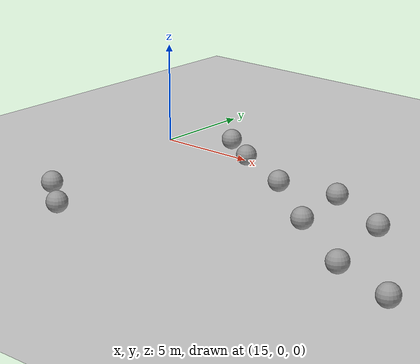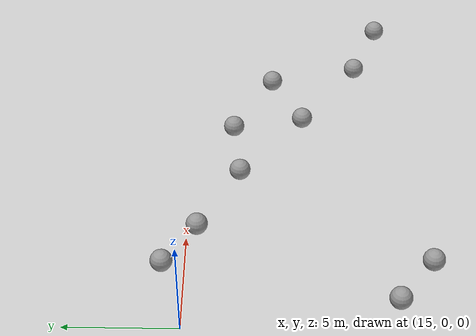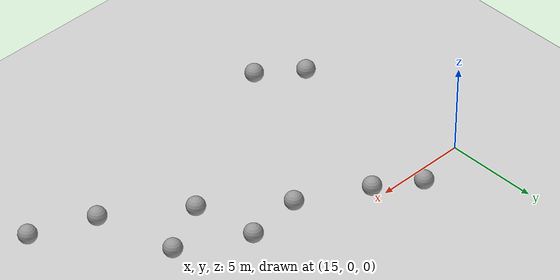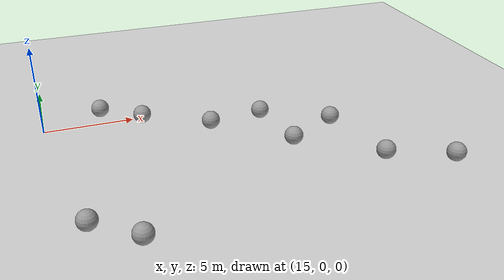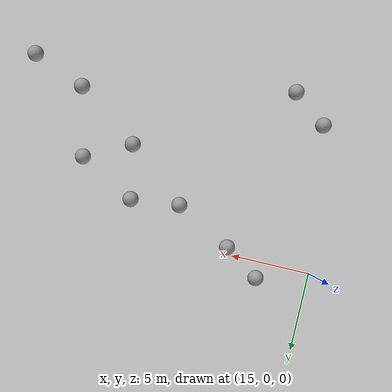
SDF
<sdf version="1.6">
 <world name="default">
  <model name="ground_plane">
   <static>1</static>
   <link name="link">
    <collision name="collision">
     <geometry><plane><normal>0 0 1</normal><size>100 100</size></plane></geometry>
     <surface><friction><ode><mu>100</mu><mu2>50</mu2></ode></friction></surface>
    </collision>
    <visual name="visual">
     <cast_shadows>0</cast_shadows>
     <geometry><plane><normal>0 0 1</normal><size>100 100</size></plane></geometry>
     <material>
      <script><uri>file://media/materials/scripts/gazebo.material</uri><name>Gazebo/Grey</name></script>
     </material>
    </visual>
   </link>
  </model>
  <model name="unit_sphere_0_clone_6">
   <pose>16.3495 -9.32648 0.5 0 -0 0</pose>
   <link name="link">
    <inertial>
     <mass>1</mass>
     <inertia><ixx>0.1</ixx><ixy>0</ixy><ixz>0</ixz><iyy>0.1</iyy><iyz>0</iyz><izz>0.1</izz></inertia>
    </inertial>
    <collision name="collision"><geometry><sphere><radius>0.5</radius></sphere></geometry></collision>
    <visual name="visual">
     <geometry><sphere><radius>0.5</radius></sphere></geometry>
     <material>
      <script><name>Gazebo/Grey</name><uri>file://media/materials/scripts/gazebo.material</uri></script>
     </material>
    </visual>
   </link>
  </model>
  <model name="unit_sphere_0_clone_15">
   <pose>18.3018 0.995003 0.5 0 -0 0</pose>
   <link name="link">
    <inertial>
     <mass>1</mass>
     <inertia><ixx>0.1</ixx><ixy>0</ixy><ixz>0</ixz><iyy>0.1</iyy><iyz>0</iyz><izz>0.1</izz></inertia>
    </inertial>
    <collision name="collision"><geometry><sphere><radius>0.5</radius></sphere></geometry></collision>
    <visual name="visual">
     <geometry><sphere><radius>0.5</radius></sphere></geometry>
     <material>
      <script><name>Gazebo/Grey</name><uri>file://media/materials/scripts/gazebo.material</uri></script>
     </material>
    </visual>
   </link>
  </model>
  <model name="unit_sphere_0_clone_16">
   <pose>20.4898 -0.468795 0.5 0 -0 0</pose>
   <link name="link">
    <inertial>
     <mass>1</mass>
     <inertia><ixx>0.1</ixx><ixy>0</ixy><ixz>0</ixz><iyy>0.1</iyy><iyz>0</iyz><izz>0.1</izz></inertia>
    </inertial>
    <collision name="collision"><geometry><sphere><radius>0.5</radius></sphere></geometry></collision>
    <visual name="visual">
     <geometry><sphere><radius>0.5</radius></sphere></geometry>
     <material>
      <script><name>Gazebo/Grey</name><uri>file://media/materials/scripts/gazebo.material</uri></script>
     </material>
    </visual>
   </link>
  </model>
  <model name="unit_sphere_0_clone_17">
   <pose>24.0194 -2.37066 0.5 0 -0 0</pose>
   <link name="link">
    <inertial>
     <mass>1</mass>
     <inertia><ixx>0.1</ixx><ixy>0</ixy><ixz>0</ixz><iyy>0.1</iyy><iyz>0</iyz><izz>0.1</izz></inertia>
    </inertial>
    <collision name="collision"><geometry><sphere><radius>0.5</radius></sphere></geometry></collision>
    <visual name="visual">
     <geometry><sphere><radius>0.5</radius></sphere></geometry>
     <material>
      <script><name>Gazebo/Grey</name><uri>file://media/materials/scripts/gazebo.material</uri></script>
     </material>
    </visual>
   </link>
  </model>
  <model name="unit_sphere_0_clone_18">
   <pose>27.7503 -5.42436 0.5 0 -0 0</pose>
   <link name="link">
    <inertial>
     <mass>1</mass>
     <inertia><ixx>0.1</ixx><ixy>0</ixy><ixz>0</ixz><iyy>0.1</iyy><iyz>0</iyz><izz>0.1</izz></inertia>
    </inertial>
    <collision name="collision"><geometry><sphere><radius>0.5</radius></sphere></geometry></collision>
    <visual name="visual">
     <geometry><sphere><radius>0.5</radius></sphere></geometry>
     <material>
      <script><name>Gazebo/Grey</name><uri>file://media/materials/scripts/gazebo.material</uri></script>
     </material>
    </visual>
   </link>
  </model>
  <model name="unit_sphere_0_clone_19">
   <pose>31.6938 -8.24862 0.5 0 -0 0</pose>
   <link name="link">
    <inertial>
     <mass>1</mass>
     <inertia><ixx>0.1</ixx><ixy>0</ixy><ixz>0</ixz><iyy>0.1</iyy><iyz>0</iyz><izz>0.1</izz></inertia>
    </inertial>
    <collision name="collision"><geometry><sphere><radius>0.5</radius></sphere></geometry></collision>
    <visual name="visual">
     <geometry><sphere><radius>0.5</radius></sphere></geometry>
     <material>
      <script><name>Gazebo/Grey</name><uri>file://media/materials/scripts/gazebo.material</uri></script>
     </material>
    </visual>
   </link>
  </model>
  <model name="unit_sphere_0_clone_50">
   <pose>18.4855 -10.9718 0.5 0 -0 0</pose>
   <link name="link">
    <inertial>
     <mass>1</mass>
     <inertia><ixx>0.1</ixx><ixy>0</ixy><ixz>0</ixz><iyy>0.1</iyy><iyz>0</iyz><izz>0.1</izz></inertia>
    </inertial>
    <collision name="collision"><geometry><sphere><radius>0.5</radius></sphere></geometry></collision>
    <visual name="visual">
     <geometry><sphere><radius>0.5</radius></sphere></geometry>
     <material>
      <script><name>Gazebo/Grey</name><uri>file://media/materials/scripts/gazebo.material</uri></script>
     </material>
    </visual>
   </link>
  </model>
  <model name="unit_sphere_0_clone_115">
   <pose>27.0928 -2.03293 0.5 0 -0 0</pose>
   <link name="link">
    <inertial>
     <mass>1</mass>
     <inertia><ixx>0.1</ixx><ixy>0</ixy><ixz>0</ixz><iyy>0.1</iyy><iyz>0</iyz><izz>0.1</izz></inertia>
    </inertial>
    <collision name="collision"><geometry><sphere><radius>0.5</radius></sphere></geometry></collision>
    <visual name="visual">
     <geometry><sphere><radius>0.5</radius></sphere></geometry>
     <material>
      <script><name>Gazebo/Grey</name><uri>file://media/materials/scripts/gazebo.material</uri></script>
     </material>
    </visual>
   </link>
  </model>
  <model name="unit_sphere_0_clone_116">
   <pose>30.6251 -3.9593 0.5 0 -0 0</pose>
   <link name="link">
    <inertial>
     <mass>1</mass>
     <inertia><ixx>0.1</ixx><ixy>0</ixy><ixz>0</ixz><iyy>0.1</iyy><iyz>0</iyz><izz>0.1</izz></inertia>
    </inertial>
    <collision name="collision"><geometry><sphere><radius>0.5</radius></sphere></geometry></collision>
    <visual name="visual">
     <geometry><sphere><radius>0.5</radius></sphere></geometry>
     <material>
      <script><name>Gazebo/Grey</name><uri>file://media/materials/scripts/gazebo.material</uri></script>
     </material>
    </visual>
   </link>
  </model>
  <model name="unit_sphere_0_clone_117">
   <pose>35 -9.57963 0.5 0 -0 0</pose>
   <link name="link">
    <inertial>
     <mass>1</mass>
     <inertia><ixx>0.1</ixx><ixy>0</ixy><ixz>0</ixz><iyy>0.1</iyy><iyz>0</iyz><izz>0.1</izz></inertia>
    </inertial>
    <collision name="collision"><geometry><sphere><radius>0.5</radius></sphere></geometry></collision>
    <visual name="visual">
     <geometry><sphere><radius>0.5</radius></sphere></geometry>
     <material>
      <script><name>Gazebo/Grey</name><uri>file://media/materials/scripts/gazebo.material</uri></script>
     </material>
    </visual>
   </link>
  </model>
 </world>
</sdf>
